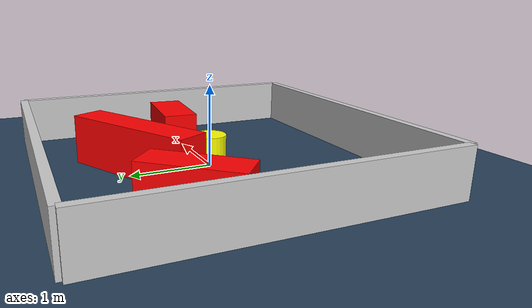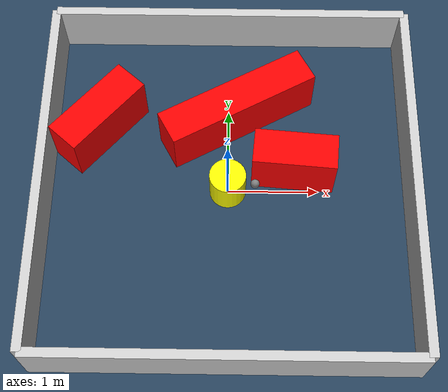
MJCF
<?xml version="1.0" ?>
<mujoco model="generated_environment">
  <option timestep="0.01" integrator="RK4" cone="elliptic"/>
  <default>
    <geom density="1"/>
  </default>
  <asset>
    <texture builtin="gradient" height="3072" rgb1="0.3 0.5 0.7" rgb2="0 0 0" type="skybox" width="512"/>
    <texture builtin="checker" height="300" mark="edge" markrgb="0.8 0.8 0.8" name="groundplane" rgb1="0.2 0.3 0.4" rgb2="0.1 0.2 0.3" type="2d" width="300"/>
    <material name="groundplane" reflectance="0.2" texrepeat="5 5" texture="groundplane" texuniform="true"/>
    <material name="robot" rgba="0.0 1.0 0.0 1"/>
  </asset>
  <worldbody>
    <light dir="0 0 -1" directional="true" pos="0 0 1.5"/>
    <geom condim="4" friction="1.0 0.005 0.001" material="groundplane" name="floor" size="0 0 0.05" type="plane"/>
    <body name="walls">
      <geom name="wall_1" condim="4" pos="-2.0 0.0 0.3" rgba="0.800000011920929 0.800000011920929 0.800000011920929 1.0" size="0.05 2.0 0.3" type="box"/>
      <geom name="wall_2" condim="4" pos="2.0 0.0 0.3" rgba="0.800000011920929 0.800000011920929 0.800000011920929 1.0" size="0.05 2.0 0.3" type="box"/>
      <geom name="wall_3" condim="4" pos="0.0 -2.0 0.3" rgba="0.800000011920929 0.800000011920929 0.800000011920929 1.0" size="2.0 0.05 0.3" type="box"/>
      <geom name="wall_4" condim="4" pos="0.0 2.0 0.3" rgba="0.800000011920929 0.800000011920929 0.800000011920929 1.0" size="2.0 0.05 0.3" type="box"/>
    </body>
    <body name="robot">
      <joint name="joint_x" type="slide" pos="0 0 0" axis="1 0 0"/>
      <joint name="joint_y" type="slide" pos="0 0 0" axis="0 1 0"/>
      <geom name="robot" type="sphere" pos="0.3 0.0 0.2" size="0.05" mass="5." friction="1.0 0.005 0.0001" condim="4" rgba="0.5 0.5 0.5 1.0"/>
      <site name="sensor_ball"/>
    </body>
    <body name="obstacle_movable_1">
      <geom name="obstacle_movable_1" condim="4" pos="0.0 0.0 0.2" euler="0 0 0.0" friction="1.0 0.005 0.001" rgba="1.0 1.0 0.0 1.0" size="0.2 0.2 0.0" type="cylinder" mass="0.1"/>
      <joint type="free"/>
    </body>
    <body name="obstacle_2_static">
      <geom name="obstacle_2_static" condim="4" pos="0.7257970483900564 0.23407276583914682 0.3" euler="0 0 175.28692256093098" friction="1.0 0.005 0.001" rgba="1 0 0 1" size="0.4524808460563507 0.2 0.3" type="box"/>
    </body>
    <body name="obstacle_3_static">
      <geom name="obstacle_3_static" condim="4" pos="0.09154403349615459 0.8870056270916875 0.3" euler="0 0 208.7701328636123" friction="1.0 0.005 0.001" rgba="1 0 0 1" size="0.8778903410519958 0.2 0.3" type="box"/>
    </body>
    <body name="obstacle_4_static">
      <geom name="obstacle_4_static" condim="4" pos="-1.439566179695376 0.7344673378231044 0.3" euler="0 0 48.9270503727966" friction="1.0 0.005 0.001" rgba="1 0 0 1" size="0.5370472995404589 0.2 0.3" type="box"/>
    </body>
  </worldbody>
  <actuator>
    <motor name="actuator_x" joint="joint_x" gear="1" ctrlrange="-1 1"/>
    <motor name="actuator_y" joint="joint_y" gear="1" ctrlrange="-1 1"/>
  </actuator>
</mujoco>
